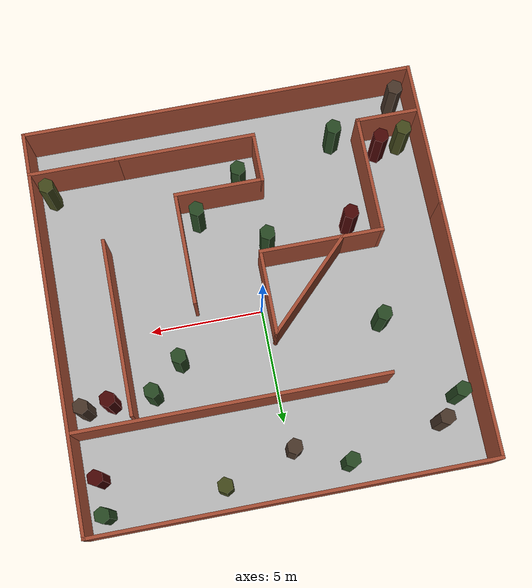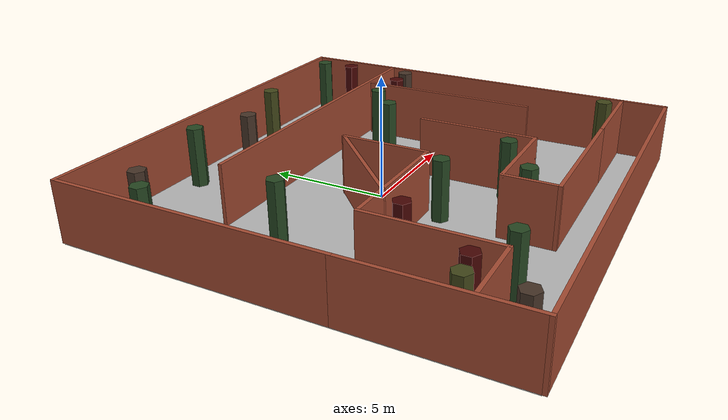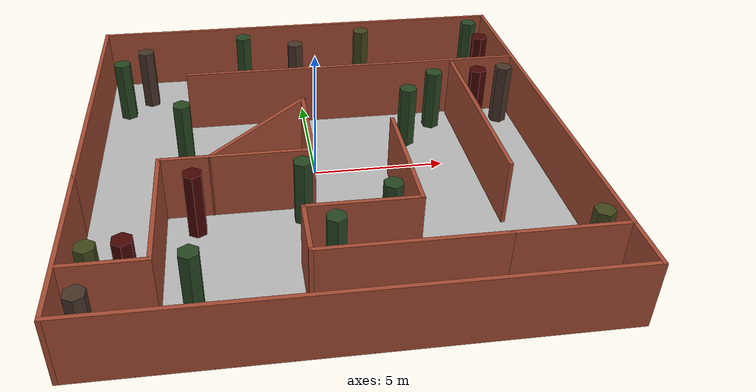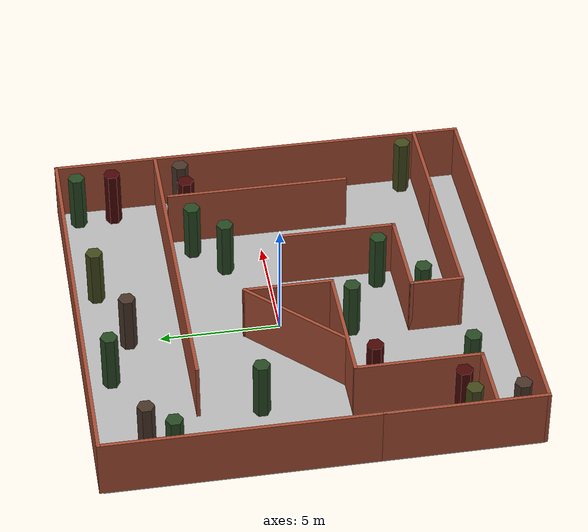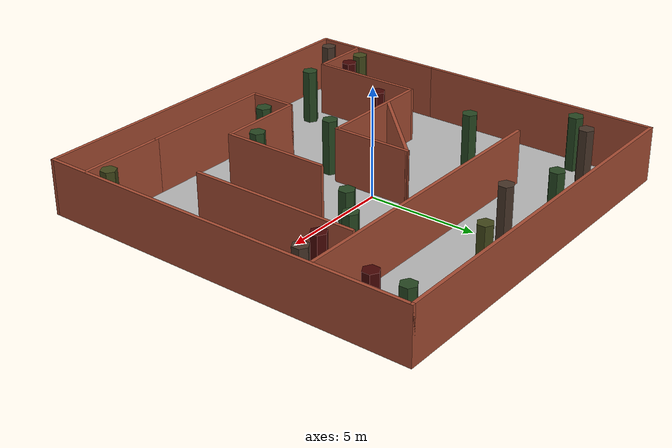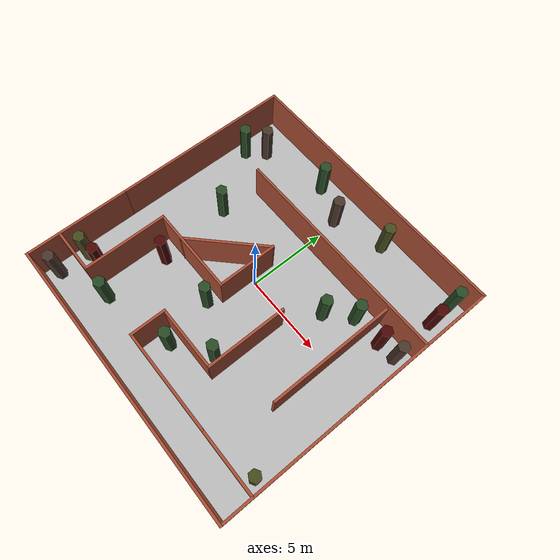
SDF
<sdf version="1.6">
 <world name="default">
  <light name="sun" type="directional">
   <pose>0 0 10 0 -0 0</pose>
   <diffuse>0.8 0.8 0.8 1</diffuse>
   <specular>0.1 0.1 0.1 1</specular>
   <attenuation>
    <range>1000</range>
    <constant>0.9</constant>
    <linear>0.01</linear>
    <quadratic>0.001</quadratic>
   </attenuation>
   <direction>-0.5 0.5 -1</direction>
  </light>
  <gravity>0 0 -9.8</gravity>
  <magnetic_field>6e-06 2.3e-05 -4.2e-05</magnetic_field>
  <atmosphere type="adiabatic"/>
  <physics name="default_physics" default="0" type="ode">
   <max_step_size>0.001</max_step_size>
   <real_time_factor>1</real_time_factor>
   <real_time_update_rate>1000</real_time_update_rate>
  </physics>
  <scene><ambient>0.4 0.4 0.4 1</ambient><background>0.7 0.7 0.7 1</background><shadows>1</shadows></scene>
  <spherical_coordinates>
   <surface_model>EARTH_WGS84</surface_model>
   <latitude_deg>0</latitude_deg>
   <longitude_deg>0</longitude_deg>
   <elevation>0</elevation>
   <heading_deg>0</heading_deg>
  </spherical_coordinates>
  <model name="grassplane">
   <pose>0.223223 -0.465823 0 0 -0 0</pose>
   <static>1</static>
   <link name="link">
    <collision name="collision">
     <geometry><plane><normal>0 0 1</normal><size>100 100</size></plane></geometry>
     <surface><friction><ode><mu>100</mu><mu2>50</mu2></ode></friction></surface>
    </collision>
    <visual name="visual">
     <geometry><mesh><uri>model://grassplane/meshes/grassplane.dae</uri><scale>1 1 1</scale></mesh></geometry>
    </visual>
   </link>
  </model>
  <model name="course_walls_1_0">
   <pose>0.265954 -0.456202 0 0 -0 0</pose>
   <link name="Wall_2">
    <collision name="Wall_2_Collision">
     <geometry><box><size>11.25 0.15 2.5</size></box></geometry>
     <pose>0 0 1.25 0 -0 0</pose>
    </collision>
    <visual name="Wall_2_Visual">
     <pose>0 0 1.25 0 -0 0</pose>
     <geometry><box><size>11.25 0.15 2.5</size></box></geometry>
     <material>
      <script><uri>file://media/materials/scripts/gazebo.material</uri><name>Gazebo/Bricks</name></script>
      <ambient>1 1 1 1</ambient>
     </material>
    </visual>
    <pose>-8.675 3.25 0 0 -0 1.5708</pose>
   </link>
   <link name="Wall_3">
    <collision name="Wall_3_Collision">
     <geometry><box><size>17.5 0.15 2.5</size></box></geometry>
     <pose>0 0 1.25 0 -0 0</pose>
    </collision>
    <visual name="Wall_3_Visual">
     <pose>0 0 1.25 0 -0 0</pose>
     <geometry><box><size>17.5 0.15 2.5</size></box></geometry>
     <material>
      <script><uri>file://media/materials/scripts/gazebo.material</uri><name>Gazebo/Bricks</name></script>
      <ambient>1 1 1 1</ambient>
     </material>
    </visual>
    <pose>0 8.8 0 0 -0 0</pose>
   </link>
   <link name="Wall_4">
    <collision name="Wall_4_Collision">
     <geometry><box><size>17.75 0.15 2.5</size></box></geometry>
     <pose>0 0 1.25 0 -0 0</pose>
    </collision>
    <visual name="Wall_4_Visual">
     <pose>0 0 1.25 0 -0 0</pose>
     <geometry><box><size>17.75 0.15 2.5</size></box></geometry>
     <material>
      <script><uri>file://media/materials/scripts/gazebo.material</uri><name>Gazebo/Bricks</name></script>
      <ambient>1 1 1 1</ambient>
     </material>
    </visual>
    <pose>8.675 0 0 0 0 -1.5708</pose>
   </link>
   <link name="Wall_5">
    <collision name="Wall_5_Collision">
     <geometry><box><size>17.5 0.15 2.5</size></box></geometry>
     <pose>0 0 1.25 0 -0 0</pose>
    </collision>
    <visual name="Wall_5_Visual">
     <pose>0 0 1.25 0 -0 0</pose>
     <geometry><box><size>17.5 0.15 2.5</size></box></geometry>
     <material>
      <script><uri>file://media/materials/scripts/gazebo.material</uri><name>Gazebo/Bricks</name></script>
      <ambient>1 1 1 1</ambient>
     </material>
    </visual>
    <pose>0 -8.8 0 0 -0 3.14159</pose>
   </link>
   <link name="Wall_6">
    <collision name="Wall_6_Collision">
     <geometry><box><size>6.65 0.15 2.5</size></box></geometry>
     <pose>0 0 1.25 0 -0 0</pose>
    </collision>
    <visual name="Wall_6_Visual">
     <pose>0 0 1.25 0 -0 0</pose>
     <geometry><box><size>6.65 0.15 2.5</size></box></geometry>
     <material>
      <script><uri>file://media/materials/scripts/gazebo.material</uri><name>Gazebo/Bricks</name></script>
      <ambient>1 1 1 1</ambient>
     </material>
    </visual>
    <pose>-8.675 -5.55 0 0 -0 1.5708</pose>
   </link>
   <static>1</static>
  </model>
  <model name="internal_walls_1">
   <pose>0.335316 -1.66655 0 0 -0 0</pose>
   <link name="Wall_10">
    <collision name="Wall_10_Collision">
     <geometry><box><size>6.25 0.15 2.5</size></box></geometry>
     <pose>0 0 1.25 0 -0 0</pose>
    </collision>
    <visual name="Wall_10_Visual">
     <pose>0 0 1.25 0 -0 0</pose>
     <geometry><box><size>6.25 0.15 2.5</size></box></geometry>
     <material>
      <script><uri>file://media/materials/scripts/gazebo.material</uri><name>Gazebo/Bricks</name></script>
      <ambient>1 1 1 1</ambient>
     </material>
    </visual>
    <pose>1.70354 -5.72413 0 0 -0 3.14159</pose>
   </link>
   <link name="Wall_11">
    <collision name="Wall_11_Collision">
     <geometry><box><size>2.25 0.15 2.5</size></box></geometry>
     <pose>0 0 1.25 0 -0 0</pose>
    </collision>
    <visual name="Wall_11_Visual">
     <pose>0 0 1.25 0 -0 0</pose>
     <geometry><box><size>2.25 0.15 2.5</size></box></geometry>
     <material>
      <script><uri>file://media/materials/scripts/gazebo.material</uri><name>Gazebo/Bricks</name></script>
      <ambient>1 1 1 1</ambient>
     </material>
    </visual>
    <pose>-1.34646 -4.67413 0 0 -0 1.5708</pose>
   </link>
   <link name="Wall_12">
    <collision name="Wall_12_Collision">
     <geometry><box><size>4 0.15 2.5</size></box></geometry>
     <pose>0 0 1.25 0 -0 0</pose>
    </collision>
    <visual name="Wall_12_Visual">
     <pose>0 0 1.25 0 -0 0</pose>
     <geometry><box><size>4 0.15 2.5</size></box></geometry>
     <material>
      <script><uri>file://media/materials/scripts/gazebo.material</uri><name>Gazebo/Bricks</name></script>
      <ambient>1 1 1 1</ambient>
     </material>
    </visual>
    <pose>0.578537 -3.62413 0 0 -0 0</pose>
   </link>
   <link name="Wall_13">
    <collision name="Wall_13_Collision">
     <geometry><box><size>5 0.15 2.5</size></box></geometry>
     <pose>0 0 1.25 0 -0 0</pose>
    </collision>
    <visual name="Wall_13_Visual">
     <pose>0 0 1.25 0 -0 0</pose>
     <geometry><box><size>5 0.15 2.5</size></box></geometry>
     <material>
      <script><uri>file://media/materials/scripts/gazebo.material</uri><name>Gazebo/Bricks</name></script>
      <ambient>1 1 1 1</ambient>
     </material>
    </visual>
    <pose>2.50354 -1.19913 0 0 -0 1.5708</pose>
   </link>
   <link name="Wall_15">
    <collision name="Wall_15_Collision">
     <geometry><box><size>2.75 0.15 2.5</size></box></geometry>
     <pose>0 0 1.25 0 -0 0</pose>
    </collision>
    <visual name="Wall_15_Visual">
     <pose>0 0 1.25 0 -0 0</pose>
     <geometry><box><size>2.75 0.15 2.5</size></box></geometry>
     <material>
      <script><uri>file://media/materials/scripts/gazebo.material</uri><name>Gazebo/Bricks</name></script>
      <ambient>1 1 1 1</ambient>
     </material>
    </visual>
    <pose>-7.30354 -5.53465 0 0 -0 3.14159</pose>
   </link>
   <link name="Wall_17">
    <collision name="Wall_17_Collision">
     <geometry><box><size>5.25 0.15 2.5</size></box></geometry>
     <pose>0 0 1.25 0 -0 0</pose>
    </collision>
    <visual name="Wall_17_Visual">
     <pose>0 0 1.25 0 -0 0</pose>
     <geometry><box><size>5.25 0.15 2.5</size></box></geometry>
     <material>
      <script><uri>file://media/materials/scripts/gazebo.material</uri><name>Gazebo/Bricks</name></script>
      <ambient>1 1 1 1</ambient>
     </material>
    </visual>
    <pose>-6.00354 -2.98465 0 0 -0 1.5708</pose>
   </link>
   <link name="Wall_18">
    <collision name="Wall_18_Collision">
     <geometry><box><size>5.5 0.15 2.5</size></box></geometry>
     <pose>0 0 1.25 0 -0 0</pose>
    </collision>
    <visual name="Wall_18_Visual">
     <pose>0 0 1.25 0 -0 0</pose>
     <geometry><box><size>5.5 0.15 2.5</size></box></geometry>
     <material>
      <script><uri>file://media/materials/scripts/gazebo.material</uri><name>Gazebo/Bricks</name></script>
      <ambient>1 1 1 1</ambient>
     </material>
    </visual>
    <pose>-3.32854 -0.434653 0 0 -0 0</pose>
   </link>
   <link name="Wall_19">
    <collision name="Wall_19_Collision">
     <geometry><box><size>3.75 0.15 2.5</size></box></geometry>
     <pose>0 0 1.25 0 -0 0</pose>
    </collision>
    <visual name="Wall_19_Visual">
     <pose>0 0 1.25 0 -0 0</pose>
     <geometry><box><size>3.75 0.15 2.5</size></box></geometry>
     <material>
      <script><uri>file://media/materials/scripts/gazebo.material</uri><name>Gazebo/Bricks</name></script>
      <ambient>1 1 1 1</ambient>
     </material>
    </visual>
    <pose>-0.653536 1.36535 0 0 -0 1.5708</pose>
   </link>
   <link name="Wall_20">
    <collision name="Wall_20_Collision">
     <geometry><box><size>5.25 0.15 2.5</size></box></geometry>
     <pose>0 0 1.25 0 -0 0</pose>
    </collision>
    <visual name="Wall_20_Visual">
     <pose>0 0 1.25 0 -0 0</pose>
     <geometry><box><size>5.25 0.15 2.5</size></box></geometry>
     <material>
      <script><uri>file://media/materials/scripts/gazebo.material</uri><name>Gazebo/Bricks</name></script>
      <ambient>1 1 1 1</ambient>
     </material>
    </visual>
    <pose>-2.45666 1.36222 0 0 0 -2.35619</pose>
   </link>
   <link name="Wall_23">
    <collision name="Wall_23_Collision">
     <geometry><box><size>13.75 0.15 2.5</size></box></geometry>
     <pose>0 0 1.25 0 -0 0</pose>
    </collision>
    <visual name="Wall_23_Visual">
     <pose>0 0 1.25 0 -0 0</pose>
     <geometry><box><size>13.75 0.15 2.5</size></box></geometry>
     <material>
      <script><uri>file://media/materials/scripts/gazebo.material</uri><name>Gazebo/Bricks</name></script>
      <ambient>1 1 1 1</ambient>
     </material>
    </visual>
    <pose>1.72694 5.72413 0 0 -0 0</pose>
   </link>
   <link name="Wall_25">
    <collision name="Wall_25_Collision">
     <geometry><box><size>7.75 0.15 2.5</size></box></geometry>
     <pose>0 0 1.25 0 -0 0</pose>
    </collision>
    <visual name="Wall_25_Visual">
     <pose>0 0 1.25 0 -0 0</pose>
     <geometry><box><size>7.75 0.15 2.5</size></box></geometry>
     <material>
      <script><uri>file://media/materials/scripts/gazebo.material</uri><name>Gazebo/Bricks</name></script>
      <ambient>1 1 1 1</ambient>
     </material>
    </visual>
    <pose>5.90659 1.64499 0 0 0 -1.5708</pose>
   </link>
   <link name="Wall_8">
    <collision name="Wall_8_Collision">
     <geometry><box><size>4 0.15 2.5</size></box></geometry>
     <pose>0 0 1.25 0 -0 0</pose>
    </collision>
    <visual name="Wall_8_Visual">
     <pose>0 0 1.25 0 -0 0</pose>
     <geometry><box><size>4 0.15 2.5</size></box></geometry>
     <material>
      <script><uri>file://media/materials/scripts/gazebo.material</uri><name>Gazebo/Bricks</name></script>
      <ambient>1 1 1 1</ambient>
     </material>
    </visual>
    <pose>6.67854 -5.72413 0 0 -0 0</pose>
   </link>
   <static>1</static>
  </model>
  <model name="tracking_object_1">
   <pose>-4.55602 -7.09179 0 0 -0 0</pose>
   <static>1</static>
   <link name="link">
    <visual name="visual">
     <geometry>
      <mesh><uri>model://tracking_object_1/meshes/tracking_object_1.dae</uri><scale>1 1 1</scale></mesh>
     </geometry>
    </visual>
   </link>
  </model>
  <model name="tracking_object_1_0">
   <pose>-0.769158 -2.86789 0 0 -0 0</pose>
   <static>1</static>
   <link name="link">
    <visual name="visual">
     <geometry>
      <mesh><uri>model://tracking_object_1/meshes/tracking_object_1.dae</uri><scale>1 1 1</scale></mesh>
     </geometry>
    </visual>
   </link>
  </model>
  <model name="tracking_object_1_1">
   <pose>2.05445 -4.48525 0 0 -0 0</pose>
   <static>1</static>
   <link name="link">
    <visual name="visual">
     <geometry>
      <mesh><uri>model://tracking_object_1/meshes/tracking_object_1.dae</uri><scale>1 1 1</scale></mesh>
     </geometry>
    </visual>
   </link>
  </model>
  <model name="tracking_object_1_2">
   <pose>-0.049743 -5.98186 0 0 -0 0</pose>
   <static>1</static>
   <link name="link">
    <visual name="visual">
     <geometry>
      <mesh><uri>model://tracking_object_1/meshes/tracking_object_1.dae</uri><scale>1 1 1</scale></mesh>
     </geometry>
    </visual>
   </link>
  </model>
  <model name="tracking_object_1_3">
   <pose>8.05734 7.56123 0 0 -0 0</pose>
   <static>1</static>
   <link name="link">
    <visual name="visual">
     <geometry>
      <mesh><uri>model://tracking_object_1/meshes/tracking_object_1.dae</uri><scale>1 1 1</scale></mesh>
     </geometry>
    </visual>
   </link>
  </model>
  <model name="tracking_object_1_4">
   <pose>-4.95988 1.52087 0 0 -0 0</pose>
   <static>1</static>
   <link name="link">
    <visual name="visual">
     <geometry>
      <mesh><uri>model://tracking_object_1/meshes/tracking_object_1.dae</uri><scale>1 1 1</scale></mesh>
     </geometry>
    </visual>
   </link>
  </model>
  <model name="tracking_object_2">
   <pose>-7.57861 -6.47872 0 0 -0 0</pose>
   <static>1</static>
   <link name="link">
    <visual name="visual">
     <geometry>
      <mesh><uri>model://tracking_object_2/meshes/tracking_object_2.dae</uri><scale>1 1 1</scale></mesh>
     </geometry>
    </visual>
   </link>
  </model>
  <model name="tracking_object_3">
   <pose>-7.60748 -8.41559 0 0 -0 0</pose>
   <static>1</static>
   <link name="link">
    <visual name="visual">
     <geometry>
      <mesh><uri>model://tracking_object_3/meshes/tracking_object_3.dae</uri><scale>1 1 1</scale></mesh>
     </geometry>
    </visual>
   </link>
  </model>
  <model name="tracking_object_4">
   <pose>-4.50271 -3.11737 0 0 -0 0</pose>
   <static>1</static>
   <link name="link">
    <visual name="visual">
     <geometry>
      <mesh><uri>model://tracking_object_4/meshes/tracking_object_4.dae</uri><scale>1 1 1</scale></mesh>
     </geometry>
    </visual>
   </link>
  </model>
  <model name="tracking_object_3_0">
   <pose>8.25639 3.04962 0 0 -0 0</pose>
   <static>1</static>
   <link name="link">
    <visual name="visual">
     <geometry>
      <mesh><uri>model://tracking_object_3/meshes/tracking_object_3.dae</uri><scale>1 1 1</scale></mesh>
     </geometry>
    </visual>
   </link>
  </model>
  <model name="tracking_object_2_0">
   <pose>8.28976 -6.74068 0 0 -0 0</pose>
   <static>1</static>
   <link name="link">
    <visual name="visual">
     <geometry>
      <mesh><uri>model://tracking_object_2/meshes/tracking_object_2.dae</uri><scale>1 1 1</scale></mesh>
     </geometry>
    </visual>
   </link>
  </model>
  <model name="tracking_object_4_0">
   <pose>7.12441 2.94752 0 0 -0 0</pose>
   <static>1</static>
   <link name="link">
    <visual name="visual">
     <geometry>
      <mesh><uri>model://tracking_object_4/meshes/tracking_object_4.dae</uri><scale>1 1 1</scale></mesh>
     </geometry>
    </visual>
   </link>
  </model>
  <model name="tracking_object_4_1">
   <pose>8.1069 6.03451 0 0 -0 0</pose>
   <static>1</static>
   <link name="link">
    <visual name="visual">
     <geometry>
      <mesh><uri>model://tracking_object_4/meshes/tracking_object_4.dae</uri><scale>1 1 1</scale></mesh>
     </geometry>
    </visual>
   </link>
  </model>
  <model name="tracking_object_4_2">
   <pose>-6.51911 -6.29663 0 0 -0 0</pose>
   <static>1</static>
   <link name="link">
    <visual name="visual">
     <geometry>
      <mesh><uri>model://tracking_object_4/meshes/tracking_object_4.dae</uri><scale>1 1 1</scale></mesh>
     </geometry>
    </visual>
   </link>
  </model>
  <model name="tracking_object_3_1">
   <pose>-6.57153 6.30103 0 0 -0 0</pose>
   <static>1</static>
   <link name="link">
    <visual name="visual">
     <geometry>
      <mesh><uri>model://tracking_object_3/meshes/tracking_object_3.dae</uri><scale>1 1 1</scale></mesh>
     </geometry>
    </visual>
   </link>
  </model>
  <model name="tracking_object_1_5">
   <pose>-7.48717 5.30117 0 0 -0 0</pose>
   <static>1</static>
   <link name="link">
    <visual name="visual">
     <geometry>
      <mesh><uri>model://tracking_object_1/meshes/tracking_object_1.dae</uri><scale>1 1 1</scale></mesh>
     </geometry>
    </visual>
   </link>
  </model>
  <model name="tracking_object_1_6">
   <pose>5.259 2.93962 0 0 -0 0</pose>
   <static>1</static>
   <link name="link">
    <visual name="visual">
     <geometry>
      <mesh><uri>model://tracking_object_1/meshes/tracking_object_1.dae</uri><scale>1 1 1</scale></mesh>
     </geometry>
    </visual>
   </link>
  </model>
  <model name="tracking_object_3_2">
   <pose>-0.140406 6.31313 0 0 -0 0</pose>
   <static>1</static>
   <link name="link">
    <visual name="visual">
     <geometry>
      <mesh><uri>model://tracking_object_3/meshes/tracking_object_3.dae</uri><scale>1 1 1</scale></mesh>
     </geometry>
    </visual>
   </link>
  </model>
  <model name="tracking_object_1_7">
   <pose>-2.36899 7.281 0 0 -0 0</pose>
   <static>1</static>
   <link name="link">
    <visual name="visual">
     <geometry>
      <mesh><uri>model://tracking_object_1/meshes/tracking_object_1.dae</uri><scale>1 1 1</scale></mesh>
     </geometry>
    </visual>
   </link>
  </model>
  <model name="tracking_object_2_1">
   <pose>2.9469 7.32975 0 0 -0 0</pose>
   <static>1</static>
   <link name="link">
    <visual name="visual">
     <geometry>
      <mesh><uri>model://tracking_object_2/meshes/tracking_object_2.dae</uri><scale>1 1 1</scale></mesh>
     </geometry>
    </visual>
   </link>
  </model>
  <model name="tracking_object_1_8">
   <pose>3.91252 1.71383 0 0 -0 0</pose>
   <static>1</static>
   <link name="link">
    <visual name="visual">
     <geometry>
      <mesh><uri>model://tracking_object_1/meshes/tracking_object_1.dae</uri><scale>1 1 1</scale></mesh>
     </geometry>
    </visual>
   </link>
  </model>
 </world>
</sdf>
